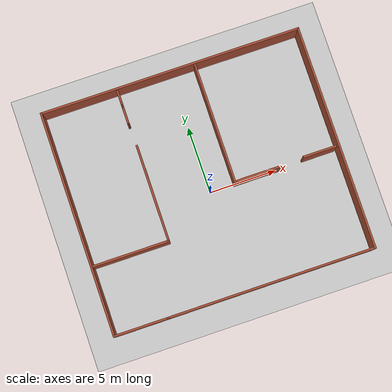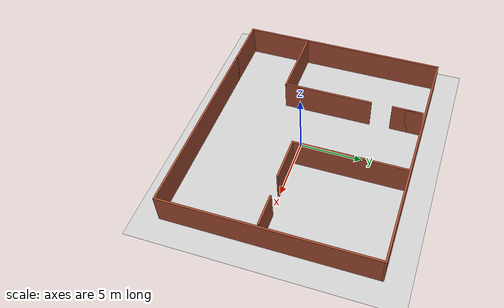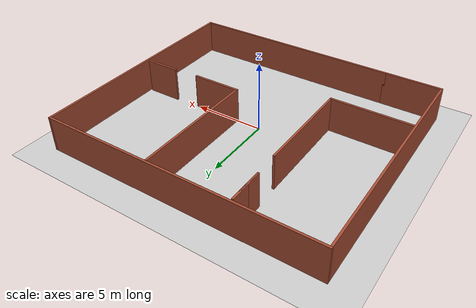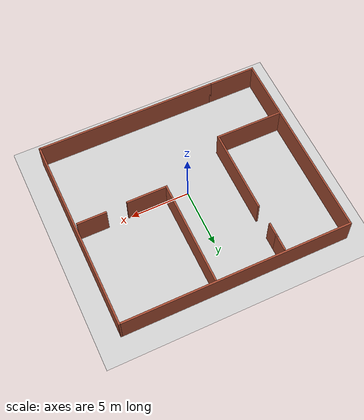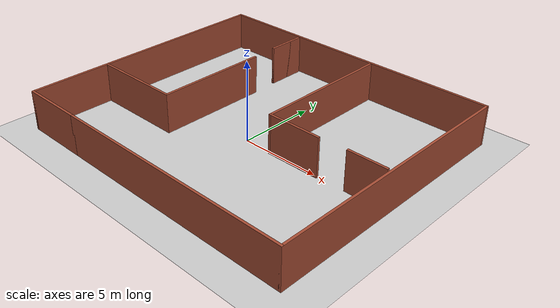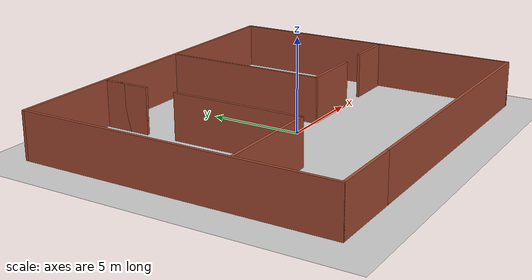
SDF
<sdf version="1.7">
 <world name="default">
  <light name="sun" type="directional">
   <pose>0 0 10 0 -0 0</pose>
   <diffuse>0.8 0.8 0.8 1</diffuse>
   <specular>0.2 0.2 0.2 1</specular>
   <attenuation>
    <range>1000</range>
    <constant>0.9</constant>
    <linear>0.01</linear>
    <quadratic>0.001</quadratic>
   </attenuation>
   <direction>-0.5 0.1 -0.9</direction>
   <spot><inner_angle>0</inner_angle><outer_angle>0</outer_angle><falloff>0</falloff></spot>
  </light>
  <model name="ground_plane">
   <static>1</static>
   <link name="link">
    <collision name="collision">
     <geometry><plane><normal>0 0 1</normal><size>100 100</size></plane></geometry>
     <surface><friction><ode><mu>100</mu><mu2>50</mu2></ode></friction></surface>
    </collision>
    <visual name="visual">
     <cast_shadows>0</cast_shadows>
     <geometry><plane><normal>0 0 1</normal><size>100 100</size></plane></geometry>
     <material>
      <script><uri>file://media/materials/scripts/gazebo.material</uri><name>Gazebo/Grey</name></script>
     </material>
    </visual>
   </link>
  </model>
  <gravity>0 0 -9.8</gravity>
  <magnetic_field>6e-06 2.3e-05 -4.2e-05</magnetic_field>
  <atmosphere type="adiabatic"/>
  <physics type="ode">
   <max_step_size>0.001</max_step_size>
   <real_time_factor>1</real_time_factor>
   <real_time_update_rate>1000</real_time_update_rate>
  </physics>
  <scene><ambient>0.4 0.4 0.4 1</ambient><background>0.7 0.7 0.7 1</background><shadows>1</shadows></scene>
  <audio><device>default</device></audio>
  <spherical_coordinates>
   <surface_model>EARTH_WGS84</surface_model>
   <latitude_deg>0</latitude_deg>
   <longitude_deg>0</longitude_deg>
   <elevation>0</elevation>
   <heading_deg>0</heading_deg>
  </spherical_coordinates>
  <model name="building">
   <pose>-0.001135 0.666163 0 0 -0 0</pose>
   <link name="Wall_10">
    <collision name="Wall_10_Collision">
     <geometry><box><size>15.5 0.15 2.5</size></box></geometry>
     <pose>0 0 1.25 0 -0 0</pose>
    </collision>
    <visual name="Wall_10_Visual">
     <pose>0 0 1.25 0 -0 0</pose>
     <geometry><box><size>15.5 0.15 2.5</size></box></geometry>
     <material>
      <script><uri>file://media/materials/scripts/gazebo.material</uri><name>Gazebo/Bricks</name></script>
      <ambient>1 1 1 1</ambient>
     </material>
     <meta><layer>0</layer></meta>
    </visual>
    <pose>2 -8.3 0 0 -0 0</pose>
   </link>
   <link name="Wall_11">
    <collision name="Wall_11_Collision">
     <geometry><box><size>16.75 0.15 2.5</size></box></geometry>
     <pose>0 0 1.25 0 -0 0</pose>
    </collision>
    <visual name="Wall_11_Visual">
     <pose>0 0 1.25 0 -0 0</pose>
     <geometry><box><size>16.75 0.15 2.5</size></box></geometry>
     <material>
      <script><uri>file://media/materials/scripts/gazebo.material</uri><name>Gazebo/Bricks</name></script>
      <ambient>1 1 1 1</ambient>
     </material>
     <meta><layer>0</layer></meta>
    </visual>
    <pose>9.675 0 0 0 -0 1.5708</pose>
   </link>
   <link name="Wall_12">
    <collision name="Wall_12_Collision">
     <geometry><box><size>19.5 0.15 2.5</size></box></geometry>
     <pose>0 0 1.25 0 -0 0</pose>
    </collision>
    <visual name="Wall_12_Visual">
     <pose>0 0 1.25 0 -0 0</pose>
     <geometry><box><size>19.5 0.15 2.5</size></box></geometry>
     <material>
      <script><uri>file://media/materials/scripts/gazebo.material</uri><name>Gazebo/Bricks</name></script>
      <ambient>1 1 1 1</ambient>
     </material>
     <meta><layer>0</layer></meta>
    </visual>
    <pose>0 8.3 0 0 -0 3.14159</pose>
   </link>
   <link name="Wall_13">
    <collision name="Wall_13_Collision">
     <geometry><box><size>16.75 0.15 2.5</size></box></geometry>
     <pose>0 0 1.25 0 -0 0</pose>
    </collision>
    <visual name="Wall_13_Visual">
     <pose>0 0 1.25 0 -0 0</pose>
     <geometry><box><size>16.75 0.15 2.5</size></box></geometry>
     <material>
      <script><uri>file://media/materials/scripts/gazebo.material</uri><name>Gazebo/Bricks</name></script>
      <ambient>1 1 1 1</ambient>
     </material>
     <meta><layer>0</layer></meta>
    </visual>
    <pose>-9.675 0 0 0 -0 -1.5708</pose>
   </link>
   <link name="Wall_14">
    <collision name="Wall_14_Collision">
     <geometry><box><size>4.15 0.15 2.5</size></box></geometry>
     <pose>0 0 1.25 0 -0 0</pose>
    </collision>
    <visual name="Wall_14_Visual">
     <pose>0 0 1.25 0 -0 0</pose>
     <geometry><box><size>4.15 0.15 2.5</size></box></geometry>
     <material>
      <script><uri>file://media/materials/scripts/gazebo.material</uri><name>Gazebo/Bricks</name></script>
      <ambient>1 1 1 1</ambient>
     </material>
     <meta><layer>0</layer></meta>
    </visual>
    <pose>-7.675 -8.3 0 0 -0 0</pose>
   </link>
   <link name="Wall_16">
    <collision name="Wall_16_Collision">
     <geometry><box><size>9 0.15 2.5</size></box></geometry>
     <pose>0 0 1.25 0 -0 0</pose>
    </collision>
    <visual name="Wall_16_Visual">
     <pose>0 0 1.25 0 -0 0</pose>
     <geometry><box><size>9 0.15 2.5</size></box></geometry>
     <material>
      <script><uri>file://media/materials/scripts/gazebo.material</uri><name>Gazebo/Bricks</name></script>
      <ambient>1 1 1 1</ambient>
     </material>
     <meta><layer>0</layer></meta>
    </visual>
    <pose>1.8314 3.70294 0 0 -0 -1.5708</pose>
   </link>
   <link name="Wall_17">
    <collision name="Wall_17_Collision">
     <geometry><box><size>3.5 0.15 2.5</size></box></geometry>
     <pose>0 0 1.25 0 -0 0</pose>
    </collision>
    <visual name="Wall_17_Visual">
     <pose>0 0 1.25 0 -0 0</pose>
     <geometry><box><size>3.5 0.15 2.5</size></box></geometry>
     <material>
      <script><uri>file://media/materials/scripts/gazebo.material</uri><name>Gazebo/Bricks</name></script>
      <ambient>1 1 1 1</ambient>
     </material>
     <meta><layer>0</layer></meta>
    </visual>
    <pose>3.5064 -0.722057 0 0 -0 0</pose>
   </link>
   <link name="Wall_19">
    <collision name="Wall_19_Collision">
     <geometry><box><size>2.5 0.15 2.5</size></box></geometry>
     <pose>0 0 1.25 0 -0 0</pose>
    </collision>
    <visual name="Wall_19_Visual">
     <pose>0 0 1.25 0 -0 0</pose>
     <geometry><box><size>2.5 0.15 2.5</size></box></geometry>
     <material>
      <script><uri>file://media/materials/scripts/gazebo.material</uri><name>Gazebo/Bricks</name></script>
      <ambient>1 1 1 1</ambient>
     </material>
     <meta><layer>0</layer></meta>
    </visual>
    <pose>8.23627 -0.609015 0 0 -0 0</pose>
   </link>
   <link name="Wall_21">
    <collision name="Wall_21_Collision">
     <geometry><box><size>5.75 0.15 2.5</size></box></geometry>
     <pose>0 0 1.25 0 -0 0</pose>
    </collision>
    <visual name="Wall_21_Visual">
     <pose>0 0 1.25 0 -0 0</pose>
     <geometry><box><size>5.75 0.15 2.5</size></box></geometry>
     <material>
      <script><uri>file://media/materials/scripts/gazebo.material</uri><name>Gazebo/Bricks</name></script>
      <ambient>1 1 1 1</ambient>
     </material>
     <meta><layer>0</layer></meta>
    </visual>
    <pose>-6.75126 -3.19319 0 0 -0 0</pose>
   </link>
   <link name="Wall_22">
    <collision name="Wall_22_Collision">
     <geometry><box><size>7.25 0.15 2.5</size></box></geometry>
     <pose>0 0 1.25 0 -0 0</pose>
    </collision>
    <visual name="Wall_22_Visual">
     <pose>0 0 1.25 0 -0 0</pose>
     <geometry><box><size>7.25 0.15 2.5</size></box></geometry>
     <material>
      <script><uri>file://media/materials/scripts/gazebo.material</uri><name>Gazebo/Bricks</name></script>
      <ambient>1 1 1 1</ambient>
     </material>
     <meta><layer>0</layer></meta>
    </visual>
    <pose>-3.95126 0.356814 0 0 -0 1.5708</pose>
   </link>
   <link name="Wall_25">
    <collision name="Wall_25_Collision">
     <geometry><box><size>2.5 0.15 2.5</size></box></geometry>
     <pose>0 0 1.25 0 -0 0</pose>
    </collision>
    <visual name="Wall_25_Visual">
     <pose>0 0 1.25 0 -0 0</pose>
     <geometry><box><size>2.5 0.15 2.5</size></box></geometry>
     <material>
      <script><uri>file://media/materials/scripts/gazebo.material</uri><name>Gazebo/Bricks</name></script>
      <ambient>1 1 1 1</ambient>
     </material>
     <meta><layer>0</layer></meta>
    </visual>
    <pose>-4.01375 6.90336 0 0 -0 1.5708</pose>
   </link>
   <link name="Wall_26">
    <collision name="Wall_26_Collision">
     <geometry><box><size>2.5 0.15 2.5</size></box></geometry>
     <pose>0 0 1.25 0 -0 0</pose>
    </collision>
    <visual name="Wall_26_Visual">
     <pose>0 0 1.25 0 -0 0</pose>
     <geometry><box><size>2.5 0.15 2.5</size></box></geometry>
     <material>
      <script><uri>file://media/materials/scripts/gazebo.material</uri><name>Gazebo/Bricks</name></script>
      <ambient>1 1 1 1</ambient>
     </material>
     <meta><layer>0</layer></meta>
    </visual>
    <pose>-4.01375 6.90336 0 0 -0 -1.5708</pose>
   </link>
   <static>1</static>
  </model>
 </world>
</sdf>
